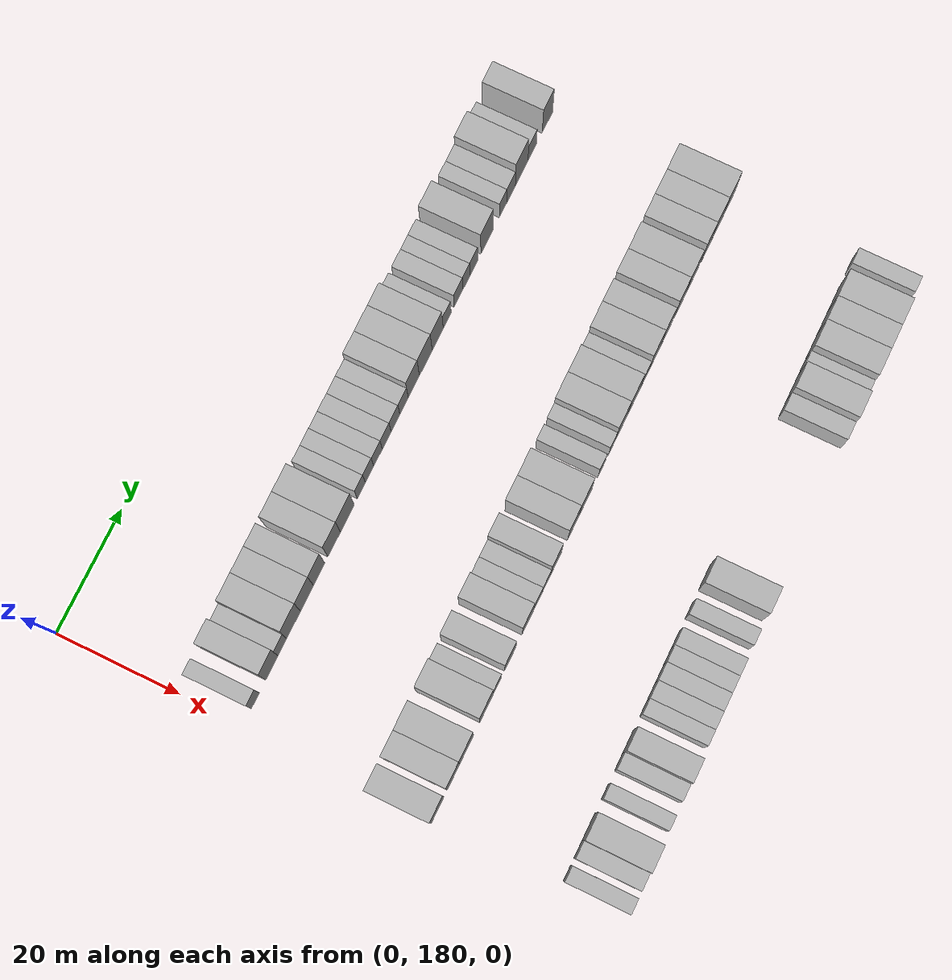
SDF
<sdf version="1.6">
 <world name="default">
  <model name="building_123">
   <static>1</static>
   <pose>25.0000 183.8803 0 0.000000 0.000000 0.000000</pose>
   <link name="link">
    <pose>0 0 3.00 0 0 0</pose>
    <collision name="collision"><geometry><box><size>10.0000 2.5077 6.0000</size></box></geometry></collision>
    <visual name="visual">
     <cast_shadows>0</cast_shadows>
     <geometry><box><size>10.0000 2.5077 6.0000</size></box></geometry>
     <material>
      <script>
       <uri>model://HANNAS_wall/materials/scripts</uri>
       <uri>model://HANNAS_wall/materials/textures</uri>
       <name>vrc/HANNAS_wall</name>
      </script>
     </material>
    </visual>
   </link>
  </model>
  <model name="building_124">
   <static>1</static>
   <pose>25.0000 189.0525 0 0.000000 0.000000 0.000000</pose>
   <link name="link">
    <pose>0 0 4.50 0 0 0</pose>
    <collision name="collision"><geometry><box><size>10.0000 3.8367 9.0000</size></box></geometry></collision>
    <visual name="visual">
     <cast_shadows>0</cast_shadows>
     <geometry><box><size>10.0000 3.8367 9.0000</size></box></geometry>
     <material>
      <script>
       <uri>model://HANNAS_wall/materials/scripts</uri>
       <uri>model://HANNAS_wall/materials/textures</uri>
       <name>vrc/HANNAS_wall</name>
      </script>
     </material>
    </visual>
   </link>
  </model>
  <model name="building_125">
   <static>1</static>
   <pose>25.0000 192.3361 0 0.000000 0.000000 0.000000</pose>
   <link name="link">
    <pose>0 0 3.00 0 0 0</pose>
    <collision name="collision"><geometry><box><size>10.0000 2.7306 6.0000</size></box></geometry></collision>
    <visual name="visual">
     <cast_shadows>0</cast_shadows>
     <geometry><box><size>10.0000 2.7306 6.0000</size></box></geometry>
     <material>
      <script>
       <uri>model://HANNAS_wall/materials/scripts</uri>
       <uri>model://HANNAS_wall/materials/textures</uri>
       <name>vrc/HANNAS_wall</name>
      </script>
     </material>
    </visual>
   </link>
  </model>
  <model name="building_126">
   <static>1</static>
   <pose>25.0000 195.8812 0 0.000000 0.000000 0.000000</pose>
   <link name="link">
    <pose>0 0 4.50 0 0 0</pose>
    <collision name="collision"><geometry><box><size>10.0000 4.3596 9.0000</size></box></geometry></collision>
    <visual name="visual">
     <cast_shadows>0</cast_shadows>
     <geometry><box><size>10.0000 4.3596 9.0000</size></box></geometry>
     <material>
      <script>
       <uri>model://HANNAS_wall/materials/scripts</uri>
       <uri>model://HANNAS_wall/materials/textures</uri>
       <name>vrc/HANNAS_wall</name>
      </script>
     </material>
    </visual>
   </link>
  </model>
  <model name="building_127">
   <static>1</static>
   <pose>25.0000 200.1119 0 0.000000 0.000000 0.000000</pose>
   <link name="link">
    <pose>0 0 4.50 0 0 0</pose>
    <collision name="collision"><geometry><box><size>10.0000 4.1016 9.0000</size></box></geometry></collision>
    <visual name="visual">
     <cast_shadows>0</cast_shadows>
     <geometry><box><size>10.0000 4.1016 9.0000</size></box></geometry>
     <material>
      <script>
       <uri>model://HANNAS_wall/materials/scripts</uri>
       <uri>model://HANNAS_wall/materials/textures</uri>
       <name>vrc/HANNAS_wall</name>
      </script>
     </material>
    </visual>
   </link>
  </model>
  <model name="building_128">
   <static>1</static>
   <pose>25.0000 203.9644 0 0.000000 0.000000 0.000000</pose>
   <link name="link">
    <pose>0 0 4.50 0 0 0</pose>
    <collision name="collision"><geometry><box><size>10.0000 3.6034 9.0000</size></box></geometry></collision>
    <visual name="visual">
     <cast_shadows>0</cast_shadows>
     <geometry><box><size>10.0000 3.6034 9.0000</size></box></geometry>
     <material>
      <script>
       <uri>model://HANNAS_wall/materials/scripts</uri>
       <uri>model://HANNAS_wall/materials/textures</uri>
       <name>vrc/HANNAS_wall</name>
      </script>
     </material>
    </visual>
   </link>
  </model>
  <model name="building_129">
   <static>1</static>
   <pose>25.0000 208.7601 0 0.000000 0.000000 0.000000</pose>
   <link name="link">
    <pose>0 0 4.50 0 0 0</pose>
    <collision name="collision"><geometry><box><size>10.0000 3.9880 9.0000</size></box></geometry></collision>
    <visual name="visual">
     <cast_shadows>0</cast_shadows>
     <geometry><box><size>10.0000 3.9880 9.0000</size></box></geometry>
     <material>
      <script>
       <uri>model://HANNAS_wall/materials/scripts</uri>
       <uri>model://HANNAS_wall/materials/textures</uri>
       <name>vrc/HANNAS_wall</name>
      </script>
     </material>
    </visual>
   </link>
  </model>
  <model name="building_130">
   <static>1</static>
   <pose>25.0000 212.9791 0 0.000000 0.000000 0.000000</pose>
   <link name="link">
    <pose>0 0 4.50 0 0 0</pose>
    <collision name="collision"><geometry><box><size>10.0000 4.4500 9.0000</size></box></geometry></collision>
    <visual name="visual">
     <cast_shadows>0</cast_shadows>
     <geometry><box><size>10.0000 4.4500 9.0000</size></box></geometry>
     <material>
      <script>
       <uri>model://HANNAS_wall/materials/scripts</uri>
       <uri>model://HANNAS_wall/materials/textures</uri>
       <name>vrc/HANNAS_wall</name>
      </script>
     </material>
    </visual>
   </link>
  </model>
  <model name="building_131">
   <static>1</static>
   <pose>25.0000 217.5082 0 0.000000 0.000000 0.000000</pose>
   <link name="link">
    <pose>0 0 3.00 0 0 0</pose>
    <collision name="collision"><geometry><box><size>10.0000 2.6082 6.0000</size></box></geometry></collision>
    <visual name="visual">
     <cast_shadows>0</cast_shadows>
     <geometry><box><size>10.0000 2.6082 6.0000</size></box></geometry>
     <material>
      <script>
       <uri>model://HANNAS_wall/materials/scripts</uri>
       <uri>model://HANNAS_wall/materials/textures</uri>
       <name>vrc/HANNAS_wall</name>
      </script>
     </material>
    </visual>
   </link>
  </model>
  <model name="building_132">
   <static>1</static>
   <pose>25.0000 220.1854 0 0.000000 0.000000 0.000000</pose>
   <link name="link">
    <pose>0 0 3.00 0 0 0</pose>
    <collision name="collision"><geometry><box><size>10.0000 2.7462 6.0000</size></box></geometry></collision>
    <visual name="visual">
     <cast_shadows>0</cast_shadows>
     <geometry><box><size>10.0000 2.7462 6.0000</size></box></geometry>
     <material>
      <script>
       <uri>model://HANNAS_wall/materials/scripts</uri>
       <uri>model://HANNAS_wall/materials/textures</uri>
       <name>vrc/HANNAS_wall</name>
      </script>
     </material>
    </visual>
   </link>
  </model>
  <model name="building_133">
   <static>1</static>
   <pose>25.0000 222.9455 0 0.000000 0.000000 0.000000</pose>
   <link name="link">
    <pose>0 0 3.00 0 0 0</pose>
    <collision name="collision"><geometry><box><size>10.0000 2.7739 6.0000</size></box></geometry></collision>
    <visual name="visual">
     <cast_shadows>0</cast_shadows>
     <geometry><box><size>10.0000 2.7739 6.0000</size></box></geometry>
     <material>
      <script>
       <uri>model://HANNAS_wall/materials/scripts</uri>
       <uri>model://HANNAS_wall/materials/textures</uri>
       <name>vrc/HANNAS_wall</name>
      </script>
     </material>
    </visual>
   </link>
  </model>
  <model name="building_134">
   <static>1</static>
   <pose>25.0000 225.7776 0 0.000000 0.000000 0.000000</pose>
   <link name="link">
    <pose>0 0 3.00 0 0 0</pose>
    <collision name="collision"><geometry><box><size>10.0000 2.8902 6.0000</size></box></geometry></collision>
    <visual name="visual">
     <cast_shadows>0</cast_shadows>
     <geometry><box><size>10.0000 2.8902 6.0000</size></box></geometry>
     <material>
      <script>
       <uri>model://HANNAS_wall/materials/scripts</uri>
       <uri>model://HANNAS_wall/materials/textures</uri>
       <name>vrc/HANNAS_wall</name>
      </script>
     </material>
    </visual>
   </link>
  </model>
  <model name="building_135">
   <static>1</static>
   <pose>25.0000 228.6524 0 0.000000 0.000000 0.000000</pose>
   <link name="link">
    <pose>0 0 3.00 0 0 0</pose>
    <collision name="collision"><geometry><box><size>10.0000 2.8596 6.0000</size></box></geometry></collision>
    <visual name="visual">
     <cast_shadows>0</cast_shadows>
     <geometry><box><size>10.0000 2.8596 6.0000</size></box></geometry>
     <material>
      <script>
       <uri>model://HANNAS_wall/materials/scripts</uri>
       <uri>model://HANNAS_wall/materials/textures</uri>
       <name>vrc/HANNAS_wall</name>
      </script>
     </material>
    </visual>
   </link>
  </model>
  <model name="building_136">
   <static>1</static>
   <pose>25.0000 231.4852 0 0.000000 0.000000 0.000000</pose>
   <link name="link">
    <pose>0 0 3.00 0 0 0</pose>
    <collision name="collision"><geometry><box><size>10.0000 2.8059 6.0000</size></box></geometry></collision>
    <visual name="visual">
     <cast_shadows>0</cast_shadows>
     <geometry><box><size>10.0000 2.8059 6.0000</size></box></geometry>
     <material>
      <script>
       <uri>model://HANNAS_wall/materials/scripts</uri>
       <uri>model://HANNAS_wall/materials/textures</uri>
       <name>vrc/HANNAS_wall</name>
      </script>
     </material>
    </visual>
   </link>
  </model>
  <model name="building_137">
   <static>1</static>
   <pose>25.0000 234.7266 0 0.000000 0.000000 0.000000</pose>
   <link name="link">
    <pose>0 0 4.50 0 0 0</pose>
    <collision name="collision"><geometry><box><size>10.0000 3.6769 9.0000</size></box></geometry></collision>
    <visual name="visual">
     <cast_shadows>0</cast_shadows>
     <geometry><box><size>10.0000 3.6769 9.0000</size></box></geometry>
     <material>
      <script>
       <uri>model://HANNAS_wall/materials/scripts</uri>
       <uri>model://HANNAS_wall/materials/textures</uri>
       <name>vrc/HANNAS_wall</name>
      </script>
     </material>
    </visual>
   </link>
  </model>
  <model name="building_138">
   <static>1</static>
   <pose>25.0000 238.6924 0 0.000000 0.000000 0.000000</pose>
   <link name="link">
    <pose>0 0 4.50 0 0 0</pose>
    <collision name="collision"><geometry><box><size>10.0000 4.2547 9.0000</size></box></geometry></collision>
    <visual name="visual">
     <cast_shadows>0</cast_shadows>
     <geometry><box><size>10.0000 4.2547 9.0000</size></box></geometry>
     <material>
      <script>
       <uri>model://HANNAS_wall/materials/scripts</uri>
       <uri>model://HANNAS_wall/materials/textures</uri>
       <name>vrc/HANNAS_wall</name>
      </script>
     </material>
    </visual>
   </link>
  </model>
  <model name="building_139">
   <static>1</static>
   <pose>25.0000 242.6608 0 0.000000 0.000000 0.000000</pose>
   <link name="link">
    <pose>0 0 4.50 0 0 0</pose>
    <collision name="collision"><geometry><box><size>10.0000 3.6821 9.0000</size></box></geometry></collision>
    <visual name="visual">
     <cast_shadows>0</cast_shadows>
     <geometry><box><size>10.0000 3.6821 9.0000</size></box></geometry>
     <material>
      <script>
       <uri>model://HANNAS_wall/materials/scripts</uri>
       <uri>model://HANNAS_wall/materials/textures</uri>
       <name>vrc/HANNAS_wall</name>
      </script>
     </material>
    </visual>
   </link>
  </model>
  <model name="building_140">
   <static>1</static>
   <pose>25.0000 245.8422 0 0.000000 0.000000 0.000000</pose>
   <link name="link">
    <pose>0 0 3.00 0 0 0</pose>
    <collision name="collision"><geometry><box><size>10.0000 2.6807 6.0000</size></box></geometry></collision>
    <visual name="visual">
     <cast_shadows>0</cast_shadows>
     <geometry><box><size>10.0000 2.6807 6.0000</size></box></geometry>
     <material>
      <script>
       <uri>model://HANNAS_wall/materials/scripts</uri>
       <uri>model://HANNAS_wall/materials/textures</uri>
       <name>vrc/HANNAS_wall</name>
      </script>
     </material>
    </visual>
   </link>
  </model>
  <model name="building_141">
   <static>1</static>
   <pose>25.0000 249.6644 0 0.000000 0.000000 0.000000</pose>
   <link name="link">
    <pose>0 0 3.00 0 0 0</pose>
    <collision name="collision"><geometry><box><size>10.0000 2.9637 6.0000</size></box></geometry></collision>
    <visual name="visual">
     <cast_shadows>0</cast_shadows>
     <geometry><box><size>10.0000 2.9637 6.0000</size></box></geometry>
     <material>
      <script>
       <uri>model://HANNAS_wall/materials/scripts</uri>
       <uri>model://HANNAS_wall/materials/textures</uri>
       <name>vrc/HANNAS_wall</name>
      </script>
     </material>
    </visual>
   </link>
  </model>
  <model name="building_142">
   <static>1</static>
   <pose>25.0000 252.3526 0 0.000000 0.000000 0.000000</pose>
   <link name="link">
    <pose>0 0 3.00 0 0 0</pose>
    <collision name="collision"><geometry><box><size>10.0000 2.4127 6.0000</size></box></geometry></collision>
    <visual name="visual">
     <cast_shadows>0</cast_shadows>
     <geometry><box><size>10.0000 2.4127 6.0000</size></box></geometry>
     <material>
      <script>
       <uri>model://HANNAS_wall/materials/scripts</uri>
       <uri>model://HANNAS_wall/materials/textures</uri>
       <name>vrc/HANNAS_wall</name>
      </script>
     </material>
    </visual>
   </link>
  </model>
  <model name="building_143">
   <static>1</static>
   <pose>25.0000 254.8942 0 0.000000 0.000000 0.000000</pose>
   <link name="link">
    <pose>0 0 3.00 0 0 0</pose>
    <collision name="collision"><geometry><box><size>10.0000 2.6706 6.0000</size></box></geometry></collision>
    <visual name="visual">
     <cast_shadows>0</cast_shadows>
     <geometry><box><size>10.0000 2.6706 6.0000</size></box></geometry>
     <material>
      <script>
       <uri>model://HANNAS_wall/materials/scripts</uri>
       <uri>model://HANNAS_wall/materials/textures</uri>
       <name>vrc/HANNAS_wall</name>
      </script>
     </material>
    </visual>
   </link>
  </model>
  <model name="building_144">
   <static>1</static>
   <pose>25.0000 259.3927 0 0.000000 0.000000 0.000000</pose>
   <link name="link">
    <pose>0 0 4.50 0 0 0</pose>
    <collision name="collision"><geometry><box><size>10.0000 4.3262 9.0000</size></box></geometry></collision>
    <visual name="visual">
     <cast_shadows>0</cast_shadows>
     <geometry><box><size>10.0000 4.3262 9.0000</size></box></geometry>
     <material>
      <script>
       <uri>model://HANNAS_wall/materials/scripts</uri>
       <uri>model://HANNAS_wall/materials/textures</uri>
       <name>vrc/HANNAS_wall</name>
      </script>
     </material>
    </visual>
   </link>
  </model>
  <model name="building_145">
   <static>1</static>
   <pose>25.0000 264.8262 0 0.000000 0.000000 0.000000</pose>
   <link name="link">
    <pose>0 0 3.00 0 0 0</pose>
    <collision name="collision"><geometry><box><size>10.0000 2.5409 6.0000</size></box></geometry></collision>
    <visual name="visual">
     <cast_shadows>0</cast_shadows>
     <geometry><box><size>10.0000 2.5409 6.0000</size></box></geometry>
     <material>
      <script>
       <uri>model://HANNAS_wall/materials/scripts</uri>
       <uri>model://HANNAS_wall/materials/textures</uri>
       <name>vrc/HANNAS_wall</name>
      </script>
     </material>
    </visual>
   </link>
  </model>
  <model name="building_146">
   <static>1</static>
   <pose>25.0000 267.5764 0 0.000000 0.000000 0.000000</pose>
   <link name="link">
    <pose>0 0 3.00 0 0 0</pose>
    <collision name="collision"><geometry><box><size>10.0000 2.9595 6.0000</size></box></geometry></collision>
    <visual name="visual">
     <cast_shadows>0</cast_shadows>
     <geometry><box><size>10.0000 2.9595 6.0000</size></box></geometry>
     <material>
      <script>
       <uri>model://HANNAS_wall/materials/scripts</uri>
       <uri>model://HANNAS_wall/materials/textures</uri>
       <name>vrc/HANNAS_wall</name>
      </script>
     </material>
    </visual>
   </link>
  </model>
  <model name="building_147">
   <static>1</static>
   <pose>25.0000 271.2343 0 0.000000 0.000000 0.000000</pose>
   <link name="link">
    <pose>0 0 4.50 0 0 0</pose>
    <collision name="collision"><geometry><box><size>10.0000 4.3564 9.0000</size></box></geometry></collision>
    <visual name="visual">
     <cast_shadows>0</cast_shadows>
     <geometry><box><size>10.0000 4.3564 9.0000</size></box></geometry>
     <material>
      <script>
       <uri>model://HANNAS_wall/materials/scripts</uri>
       <uri>model://HANNAS_wall/materials/textures</uri>
       <name>vrc/HANNAS_wall</name>
      </script>
     </material>
    </visual>
   </link>
  </model>
  <model name="building_148">
   <static>1</static>
   <pose>25.0000 274.8898 0 0.000000 0.000000 0.000000</pose>
   <link name="link">
    <pose>0 0 3.00 0 0 0</pose>
    <collision name="collision"><geometry><box><size>10.0000 2.9546 6.0000</size></box></geometry></collision>
    <visual name="visual">
     <cast_shadows>0</cast_shadows>
     <geometry><box><size>10.0000 2.9546 6.0000</size></box></geometry>
     <material>
      <script>
       <uri>model://HANNAS_wall/materials/scripts</uri>
       <uri>model://HANNAS_wall/materials/textures</uri>
       <name>vrc/HANNAS_wall</name>
      </script>
     </material>
    </visual>
   </link>
  </model>
  <model name="building_149">
   <static>1</static>
   <pose>25.0000 280.1823 0 0.000000 0.000000 0.000000</pose>
   <link name="link">
    <pose>0 0 4.50 0 0 0</pose>
    <collision name="collision"><geometry><box><size>10.0000 3.6305 9.0000</size></box></geometry></collision>
    <visual name="visual">
     <cast_shadows>0</cast_shadows>
     <geometry><box><size>10.0000 3.6305 9.0000</size></box></geometry>
     <material>
      <script>
       <uri>model://HANNAS_wall/materials/scripts</uri>
       <uri>model://HANNAS_wall/materials/textures</uri>
       <name>vrc/HANNAS_wall</name>
      </script>
     </material>
    </visual>
   </link>
  </model>
  <model name="building_272">
   <static>1</static>
   <pose>55.0000 181.4285 0 0.000000 0.000000 0.000000</pose>
   <link name="link">
    <pose>0 0 4.50 0 0 0</pose>
    <collision name="collision"><geometry><box><size>10.0000 4.1048 9.0000</size></box></geometry></collision>
    <visual name="visual">
     <cast_shadows>0</cast_shadows>
     <geometry><box><size>10.0000 4.1048 9.0000</size></box></geometry>
     <material>
      <script>
       <uri>model://HANNAS_wall/materials/scripts</uri>
       <uri>model://HANNAS_wall/materials/textures</uri>
       <name>vrc/HANNAS_wall</name>
      </script>
     </material>
    </visual>
   </link>
  </model>
  <model name="building_273">
   <static>1</static>
   <pose>55.0000 186.4915 0 0.000000 0.000000 0.000000</pose>
   <link name="link">
    <pose>0 0 4.50 0 0 0</pose>
    <collision name="collision"><geometry><box><size>10.0000 4.0212 9.0000</size></box></geometry></collision>
    <visual name="visual">
     <cast_shadows>0</cast_shadows>
     <geometry><box><size>10.0000 4.0212 9.0000</size></box></geometry>
     <material>
      <script>
       <uri>model://HANNAS_wall/materials/scripts</uri>
       <uri>model://HANNAS_wall/materials/textures</uri>
       <name>vrc/HANNAS_wall</name>
      </script>
     </material>
    </visual>
   </link>
  </model>
  <model name="building_274">
   <static>1</static>
   <pose>55.0000 190.7389 0 0.000000 0.000000 0.000000</pose>
   <link name="link">
    <pose>0 0 4.50 0 0 0</pose>
    <collision name="collision"><geometry><box><size>10.0000 4.4736 9.0000</size></box></geometry></collision>
    <visual name="visual">
     <cast_shadows>0</cast_shadows>
     <geometry><box><size>10.0000 4.4736 9.0000</size></box></geometry>
     <material>
      <script>
       <uri>model://HANNAS_wall/materials/scripts</uri>
       <uri>model://HANNAS_wall/materials/textures</uri>
       <name>vrc/HANNAS_wall</name>
      </script>
     </material>
    </visual>
   </link>
  </model>
  <model name="building_275">
   <static>1</static>
   <pose>55.0000 197.1629 0 0.000000 0.000000 0.000000</pose>
   <link name="link">
    <pose>0 0 4.50 0 0 0</pose>
    <collision name="collision"><geometry><box><size>10.0000 4.3743 9.0000</size></box></geometry></collision>
    <visual name="visual">
     <cast_shadows>0</cast_shadows>
     <geometry><box><size>10.0000 4.3743 9.0000</size></box></geometry>
     <material>
      <script>
       <uri>model://HANNAS_wall/materials/scripts</uri>
       <uri>model://HANNAS_wall/materials/textures</uri>
       <name>vrc/HANNAS_wall</name>
      </script>
     </material>
    </visual>
   </link>
  </model>
  <model name="building_276">
   <static>1</static>
   <pose>55.0000 200.6907 0 0.000000 0.000000 0.000000</pose>
   <link name="link">
    <pose>0 0 3.00 0 0 0</pose>
    <collision name="collision"><geometry><box><size>10.0000 2.6813 6.0000</size></box></geometry></collision>
    <visual name="visual">
     <cast_shadows>0</cast_shadows>
     <geometry><box><size>10.0000 2.6813 6.0000</size></box></geometry>
     <material>
      <script>
       <uri>model://HANNAS_wall/materials/scripts</uri>
       <uri>model://HANNAS_wall/materials/textures</uri>
       <name>vrc/HANNAS_wall</name>
      </script>
     </material>
    </visual>
   </link>
  </model>
  <model name="building_277">
   <static>1</static>
   <pose>55.0000 204.8999 0 0.000000 0.000000 0.000000</pose>
   <link name="link">
    <pose>0 0 4.50 0 0 0</pose>
    <collision name="collision"><geometry><box><size>10.0000 3.7370 9.0000</size></box></geometry></collision>
    <visual name="visual">
     <cast_shadows>0</cast_shadows>
     <geometry><box><size>10.0000 3.7370 9.0000</size></box></geometry>
     <material>
      <script>
       <uri>model://HANNAS_wall/materials/scripts</uri>
       <uri>model://HANNAS_wall/materials/textures</uri>
       <name>vrc/HANNAS_wall</name>
      </script>
     </material>
    </visual>
   </link>
  </model>
  <model name="building_278">
   <static>1</static>
   <pose>55.0000 210.6844 0 0.000000 0.000000 0.000000</pose>
   <link name="link">
    <pose>0 0 4.50 0 0 0</pose>
    <collision name="collision"><geometry><box><size>10.0000 3.8321 9.0000</size></box></geometry></collision>
    <visual name="visual">
     <cast_shadows>0</cast_shadows>
     <geometry><box><size>10.0000 3.8321 9.0000</size></box></geometry>
     <material>
      <script>
       <uri>model://HANNAS_wall/materials/scripts</uri>
       <uri>model://HANNAS_wall/materials/textures</uri>
       <name>vrc/HANNAS_wall</name>
      </script>
     </material>
    </visual>
   </link>
  </model>
  <model name="building_279">
   <static>1</static>
   <pose>55.0000 214.0443 0 0.000000 0.000000 0.000000</pose>
   <link name="link">
    <pose>0 0 3.00 0 0 0</pose>
    <collision name="collision"><geometry><box><size>10.0000 2.8877 6.0000</size></box></geometry></collision>
    <visual name="visual">
     <cast_shadows>0</cast_shadows>
     <geometry><box><size>10.0000 2.8877 6.0000</size></box></geometry>
     <material>
      <script>
       <uri>model://HANNAS_wall/materials/scripts</uri>
       <uri>model://HANNAS_wall/materials/textures</uri>
       <name>vrc/HANNAS_wall</name>
      </script>
     </material>
    </visual>
   </link>
  </model>
  <model name="building_280">
   <static>1</static>
   <pose>55.0000 216.8787 0 0.000000 0.000000 0.000000</pose>
   <link name="link">
    <pose>0 0 3.00 0 0 0</pose>
    <collision name="collision"><geometry><box><size>10.0000 2.7812 6.0000</size></box></geometry></collision>
    <visual name="visual">
     <cast_shadows>0</cast_shadows>
     <geometry><box><size>10.0000 2.7812 6.0000</size></box></geometry>
     <material>
      <script>
       <uri>model://HANNAS_wall/materials/scripts</uri>
       <uri>model://HANNAS_wall/materials/textures</uri>
       <name>vrc/HANNAS_wall</name>
      </script>
     </material>
    </visual>
   </link>
  </model>
  <model name="building_281">
   <static>1</static>
   <pose>55.0000 220.0837 0 0.000000 0.000000 0.000000</pose>
   <link name="link">
    <pose>0 0 4.50 0 0 0</pose>
    <collision name="collision"><geometry><box><size>10.0000 3.6287 9.0000</size></box></geometry></collision>
    <visual name="visual">
     <cast_shadows>0</cast_shadows>
     <geometry><box><size>10.0000 3.6287 9.0000</size></box></geometry>
     <material>
      <script>
       <uri>model://HANNAS_wall/materials/scripts</uri>
       <uri>model://HANNAS_wall/materials/textures</uri>
       <name>vrc/HANNAS_wall</name>
      </script>
     </material>
    </visual>
   </link>
  </model>
  <model name="building_282">
   <static>1</static>
   <pose>55.0000 225.8750 0 0.000000 0.000000 0.000000</pose>
   <link name="link">
    <pose>0 0 4.50 0 0 0</pose>
    <collision name="collision"><geometry><box><size>10.0000 3.9540 9.0000</size></box></geometry></collision>
    <visual name="visual">
     <cast_shadows>0</cast_shadows>
     <geometry><box><size>10.0000 3.9540 9.0000</size></box></geometry>
     <material>
      <script>
       <uri>model://HANNAS_wall/materials/scripts</uri>
       <uri>model://HANNAS_wall/materials/textures</uri>
       <name>vrc/HANNAS_wall</name>
      </script>
     </material>
    </visual>
   </link>
  </model>
  <model name="building_283">
   <static>1</static>
   <pose>55.0000 230.0237 0 0.000000 0.000000 0.000000</pose>
   <link name="link">
    <pose>0 0 4.50 0 0 0</pose>
    <collision name="collision"><geometry><box><size>10.0000 4.3434 9.0000</size></box></geometry></collision>
    <visual name="visual">
     <cast_shadows>0</cast_shadows>
     <geometry><box><size>10.0000 4.3434 9.0000</size></box></geometry>
     <material>
      <script>
       <uri>model://HANNAS_wall/materials/scripts</uri>
       <uri>model://HANNAS_wall/materials/textures</uri>
       <name>vrc/HANNAS_wall</name>
      </script>
     </material>
    </visual>
   </link>
  </model>
  <model name="building_284">
   <static>1</static>
   <pose>55.0000 235.4565 0 0.000000 0.000000 0.000000</pose>
   <link name="link">
    <pose>0 0 3.00 0 0 0</pose>
    <collision name="collision"><geometry><box><size>10.0000 2.5221 6.0000</size></box></geometry></collision>
    <visual name="visual">
     <cast_shadows>0</cast_shadows>
     <geometry><box><size>10.0000 2.5221 6.0000</size></box></geometry>
     <material>
      <script>
       <uri>model://HANNAS_wall/materials/scripts</uri>
       <uri>model://HANNAS_wall/materials/textures</uri>
       <name>vrc/HANNAS_wall</name>
      </script>
     </material>
    </visual>
   </link>
  </model>
  <model name="building_285">
   <static>1</static>
   <pose>55.0000 238.9524 0 0.000000 0.000000 0.000000</pose>
   <link name="link">
    <pose>0 0 3.00 0 0 0</pose>
    <collision name="collision"><geometry><box><size>10.0000 2.4697 6.0000</size></box></geometry></collision>
    <visual name="visual">
     <cast_shadows>0</cast_shadows>
     <geometry><box><size>10.0000 2.4697 6.0000</size></box></geometry>
     <material>
      <script>
       <uri>model://HANNAS_wall/materials/scripts</uri>
       <uri>model://HANNAS_wall/materials/textures</uri>
       <name>vrc/HANNAS_wall</name>
      </script>
     </material>
    </visual>
   </link>
  </model>
  <model name="building_286">
   <static>1</static>
   <pose>55.0000 242.3218 0 0.000000 0.000000 0.000000</pose>
   <link name="link">
    <pose>0 0 4.50 0 0 0</pose>
    <collision name="collision"><geometry><box><size>10.0000 4.2691 9.0000</size></box></geometry></collision>
    <visual name="visual">
     <cast_shadows>0</cast_shadows>
     <geometry><box><size>10.0000 4.2691 9.0000</size></box></geometry>
     <material>
      <script>
       <uri>model://HANNAS_wall/materials/scripts</uri>
       <uri>model://HANNAS_wall/materials/textures</uri>
       <name>vrc/HANNAS_wall</name>
      </script>
     </material>
    </visual>
   </link>
  </model>
  <model name="building_287">
   <static>1</static>
   <pose>55.0000 246.6547 0 0.000000 0.000000 0.000000</pose>
   <link name="link">
    <pose>0 0 4.50 0 0 0</pose>
    <collision name="collision"><geometry><box><size>10.0000 4.3966 9.0000</size></box></geometry></collision>
    <visual name="visual">
     <cast_shadows>0</cast_shadows>
     <geometry><box><size>10.0000 4.3966 9.0000</size></box></geometry>
     <material>
      <script>
       <uri>model://HANNAS_wall/materials/scripts</uri>
       <uri>model://HANNAS_wall/materials/textures</uri>
       <name>vrc/HANNAS_wall</name>
      </script>
     </material>
    </visual>
   </link>
  </model>
  <model name="building_288">
   <static>1</static>
   <pose>55.0000 250.3220 0 0.000000 0.000000 0.000000</pose>
   <link name="link">
    <pose>0 0 3.00 0 0 0</pose>
    <collision name="collision"><geometry><box><size>10.0000 2.9381 6.0000</size></box></geometry></collision>
    <visual name="visual">
     <cast_shadows>0</cast_shadows>
     <geometry><box><size>10.0000 2.9381 6.0000</size></box></geometry>
     <material>
      <script>
       <uri>model://HANNAS_wall/materials/scripts</uri>
       <uri>model://HANNAS_wall/materials/textures</uri>
       <name>vrc/HANNAS_wall</name>
      </script>
     </material>
    </visual>
   </link>
  </model>
  <model name="building_289">
   <static>1</static>
   <pose>55.0000 253.9023 0 0.000000 0.000000 0.000000</pose>
   <link name="link">
    <pose>0 0 4.50 0 0 0</pose>
    <collision name="collision"><geometry><box><size>10.0000 4.2225 9.0000</size></box></geometry></collision>
    <visual name="visual">
     <cast_shadows>0</cast_shadows>
     <geometry><box><size>10.0000 4.2225 9.0000</size></box></geometry>
     <material>
      <script>
       <uri>model://HANNAS_wall/materials/scripts</uri>
       <uri>model://HANNAS_wall/materials/textures</uri>
       <name>vrc/HANNAS_wall</name>
      </script>
     </material>
    </visual>
   </link>
  </model>
  <model name="building_290">
   <static>1</static>
   <pose>55.0000 257.8704 0 0.000000 0.000000 0.000000</pose>
   <link name="link">
    <pose>0 0 4.50 0 0 0</pose>
    <collision name="collision"><geometry><box><size>10.0000 3.7136 9.0000</size></box></geometry></collision>
    <visual name="visual">
     <cast_shadows>0</cast_shadows>
     <geometry><box><size>10.0000 3.7136 9.0000</size></box></geometry>
     <material>
      <script>
       <uri>model://HANNAS_wall/materials/scripts</uri>
       <uri>model://HANNAS_wall/materials/textures</uri>
       <name>vrc/HANNAS_wall</name>
      </script>
     </material>
    </visual>
   </link>
  </model>
  <model name="building_291">
   <static>1</static>
   <pose>55.0000 262.7176 0 0.000000 0.000000 0.000000</pose>
   <link name="link">
    <pose>0 0 4.50 0 0 0</pose>
    <collision name="collision"><geometry><box><size>10.0000 3.9808 9.0000</size></box></geometry></collision>
    <visual name="visual">
     <cast_shadows>0</cast_shadows>
     <geometry><box><size>10.0000 3.9808 9.0000</size></box></geometry>
     <material>
      <script>
       <uri>model://HANNAS_wall/materials/scripts</uri>
       <uri>model://HANNAS_wall/materials/textures</uri>
       <name>vrc/HANNAS_wall</name>
      </script>
     </material>
    </visual>
   </link>
  </model>
  <model name="building_292">
   <static>1</static>
   <pose>55.0000 266.9521 0 0.000000 0.000000 0.000000</pose>
   <link name="link">
    <pose>0 0 4.50 0 0 0</pose>
    <collision name="collision"><geometry><box><size>10.0000 4.4882 9.0000</size></box></geometry></collision>
    <visual name="visual">
     <cast_shadows>0</cast_shadows>
     <geometry><box><size>10.0000 4.4882 9.0000</size></box></geometry>
     <material>
      <script>
       <uri>model://HANNAS_wall/materials/scripts</uri>
       <uri>model://HANNAS_wall/materials/textures</uri>
       <name>vrc/HANNAS_wall</name>
      </script>
     </material>
    </visual>
   </link>
  </model>
  <model name="building_293">
   <static>1</static>
   <pose>55.0000 272.0469 0 0.000000 0.000000 0.000000</pose>
   <link name="link">
    <pose>0 0 4.50 0 0 0</pose>
    <collision name="collision"><geometry><box><size>10.0000 3.7014 9.0000</size></box></geometry></collision>
    <visual name="visual">
     <cast_shadows>0</cast_shadows>
     <geometry><box><size>10.0000 3.7014 9.0000</size></box></geometry>
     <material>
      <script>
       <uri>model://HANNAS_wall/materials/scripts</uri>
       <uri>model://HANNAS_wall/materials/textures</uri>
       <name>vrc/HANNAS_wall</name>
      </script>
     </material>
    </visual>
   </link>
  </model>
  <model name="building_294">
   <static>1</static>
   <pose>55.0000 275.9656 0 0.000000 0.000000 0.000000</pose>
   <link name="link">
    <pose>0 0 4.50 0 0 0</pose>
    <collision name="collision"><geometry><box><size>10.0000 4.1360 9.0000</size></box></geometry></collision>
    <visual name="visual">
     <cast_shadows>0</cast_shadows>
     <geometry><box><size>10.0000 4.1360 9.0000</size></box></geometry>
     <material>
      <script>
       <uri>model://HANNAS_wall/materials/scripts</uri>
       <uri>model://HANNAS_wall/materials/textures</uri>
       <name>vrc/HANNAS_wall</name>
      </script>
     </material>
    </visual>
   </link>
  </model>
  <model name="building_295">
   <static>1</static>
   <pose>55.0000 280.2120 0 0.000000 0.000000 0.000000</pose>
   <link name="link">
    <pose>0 0 4.50 0 0 0</pose>
    <collision name="collision"><geometry><box><size>10.0000 4.3568 9.0000</size></box></geometry></collision>
    <visual name="visual">
     <cast_shadows>0</cast_shadows>
     <geometry><box><size>10.0000 4.3568 9.0000</size></box></geometry>
     <material>
      <script>
       <uri>model://HANNAS_wall/materials/scripts</uri>
       <uri>model://HANNAS_wall/materials/textures</uri>
       <name>vrc/HANNAS_wall</name>
      </script>
     </material>
    </visual>
   </link>
  </model>
  <model name="building_411">
   <static>1</static>
   <pose>85.0000 181.5428 0 0.000000 0.000000 0.000000</pose>
   <link name="link">
    <pose>0 0 3.00 0 0 0</pose>
    <collision name="collision"><geometry><box><size>10.0000 2.4488 6.0000</size></box></geometry></collision>
    <visual name="visual">
     <cast_shadows>0</cast_shadows>
     <geometry><box><size>10.0000 2.4488 6.0000</size></box></geometry>
     <material>
      <script>
       <uri>model://HANNAS_wall/materials/scripts</uri>
       <uri>model://HANNAS_wall/materials/textures</uri>
       <name>vrc/HANNAS_wall</name>
      </script>
     </material>
    </visual>
   </link>
  </model>
  <model name="building_412">
   <static>1</static>
   <pose>85.0000 185.1366 0 0.000000 0.000000 0.000000</pose>
   <link name="link">
    <pose>0 0 3.00 0 0 0</pose>
    <collision name="collision"><geometry><box><size>10.0000 2.7388 6.0000</size></box></geometry></collision>
    <visual name="visual">
     <cast_shadows>0</cast_shadows>
     <geometry><box><size>10.0000 2.7388 6.0000</size></box></geometry>
     <material>
      <script>
       <uri>model://HANNAS_wall/materials/scripts</uri>
       <uri>model://HANNAS_wall/materials/textures</uri>
       <name>vrc/HANNAS_wall</name>
      </script>
     </material>
    </visual>
   </link>
  </model>
  <model name="building_413">
   <static>1</static>
   <pose>85.0000 188.6118 0 0.000000 0.000000 0.000000</pose>
   <link name="link">
    <pose>0 0 4.50 0 0 0</pose>
    <collision name="collision"><geometry><box><size>10.0000 4.2115 9.0000</size></box></geometry></collision>
    <visual name="visual">
     <cast_shadows>0</cast_shadows>
     <geometry><box><size>10.0000 4.2115 9.0000</size></box></geometry>
     <material>
      <script>
       <uri>model://HANNAS_wall/materials/scripts</uri>
       <uri>model://HANNAS_wall/materials/textures</uri>
       <name>vrc/HANNAS_wall</name>
      </script>
     </material>
    </visual>
   </link>
  </model>
  <model name="building_414">
   <static>1</static>
   <pose>85.0000 193.9196 0 0.000000 0.000000 0.000000</pose>
   <link name="link">
    <pose>0 0 3.00 0 0 0</pose>
    <collision name="collision"><geometry><box><size>10.0000 2.4042 6.0000</size></box></geometry></collision>
    <visual name="visual">
     <cast_shadows>0</cast_shadows>
     <geometry><box><size>10.0000 2.4042 6.0000</size></box></geometry>
     <material>
      <script>
       <uri>model://HANNAS_wall/materials/scripts</uri>
       <uri>model://HANNAS_wall/materials/textures</uri>
       <name>vrc/HANNAS_wall</name>
      </script>
     </material>
    </visual>
   </link>
  </model>
  <model name="building_415">
   <static>1</static>
   <pose>85.0000 198.4683 0 0.000000 0.000000 0.000000</pose>
   <link name="link">
    <pose>0 0 3.00 0 0 0</pose>
    <collision name="collision"><geometry><box><size>10.0000 2.6932 6.0000</size></box></geometry></collision>
    <visual name="visual">
     <cast_shadows>0</cast_shadows>
     <geometry><box><size>10.0000 2.6932 6.0000</size></box></geometry>
     <material>
      <script>
       <uri>model://HANNAS_wall/materials/scripts</uri>
       <uri>model://HANNAS_wall/materials/textures</uri>
       <name>vrc/HANNAS_wall</name>
      </script>
     </material>
    </visual>
   </link>
  </model>
  <model name="building_416">
   <static>1</static>
   <pose>85.0000 201.6665 0 0.000000 0.000000 0.000000</pose>
   <link name="link">
    <pose>0 0 4.50 0 0 0</pose>
    <collision name="collision"><geometry><box><size>10.0000 3.7033 9.0000</size></box></geometry></collision>
    <visual name="visual">
     <cast_shadows>0</cast_shadows>
     <geometry><box><size>10.0000 3.7033 9.0000</size></box></geometry>
     <material>
      <script>
       <uri>model://HANNAS_wall/materials/scripts</uri>
       <uri>model://HANNAS_wall/materials/textures</uri>
       <name>vrc/HANNAS_wall</name>
      </script>
     </material>
    </visual>
   </link>
  </model>
  <model name="building_417">
   <static>1</static>
   <pose>85.0000 206.7585 0 0.000000 0.000000 0.000000</pose>
   <link name="link">
    <pose>0 0 3.00 0 0 0</pose>
    <collision name="collision"><geometry><box><size>10.0000 2.4806 6.0000</size></box></geometry></collision>
    <visual name="visual">
     <cast_shadows>0</cast_shadows>
     <geometry><box><size>10.0000 2.4806 6.0000</size></box></geometry>
     <material>
      <script>
       <uri>model://HANNAS_wall/materials/scripts</uri>
       <uri>model://HANNAS_wall/materials/textures</uri>
       <name>vrc/HANNAS_wall</name>
      </script>
     </material>
    </visual>
   </link>
  </model>
  <model name="building_418">
   <static>1</static>
   <pose>85.0000 209.4034 0 0.000000 0.000000 0.000000</pose>
   <link name="link">
    <pose>0 0 3.00 0 0 0</pose>
    <collision name="collision"><geometry><box><size>10.0000 2.8093 6.0000</size></box></geometry></collision>
    <visual name="visual">
     <cast_shadows>0</cast_shadows>
     <geometry><box><size>10.0000 2.8093 6.0000</size></box></geometry>
     <material>
      <script>
       <uri>model://HANNAS_wall/materials/scripts</uri>
       <uri>model://HANNAS_wall/materials/textures</uri>
       <name>vrc/HANNAS_wall</name>
      </script>
     </material>
    </visual>
   </link>
  </model>
  <model name="building_419">
   <static>1</static>
   <pose>85.0000 212.2138 0 0.000000 0.000000 0.000000</pose>
   <link name="link">
    <pose>0 0 3.00 0 0 0</pose>
    <collision name="collision"><geometry><box><size>10.0000 2.8116 6.0000</size></box></geometry></collision>
    <visual name="visual">
     <cast_shadows>0</cast_shadows>
     <geometry><box><size>10.0000 2.8116 6.0000</size></box></geometry>
     <material>
      <script>
       <uri>model://HANNAS_wall/materials/scripts</uri>
       <uri>model://HANNAS_wall/materials/textures</uri>
       <name>vrc/HANNAS_wall</name>
      </script>
     </material>
    </visual>
   </link>
  </model>
  <model name="building_420">
   <static>1</static>
   <pose>85.0000 214.9432 0 0.000000 0.000000 0.000000</pose>
   <link name="link">
    <pose>0 0 3.00 0 0 0</pose>
    <collision name="collision"><geometry><box><size>10.0000 2.6471 6.0000</size></box></geometry></collision>
    <visual name="visual">
     <cast_shadows>0</cast_shadows>
     <geometry><box><size>10.0000 2.6471 6.0000</size></box></geometry>
     <material>
      <script>
       <uri>model://HANNAS_wall/materials/scripts</uri>
       <uri>model://HANNAS_wall/materials/textures</uri>
       <name>vrc/HANNAS_wall</name>
      </script>
     </material>
    </visual>
   </link>
  </model>
  <model name="building_421">
   <static>1</static>
   <pose>85.0000 217.6193 0 0.000000 0.000000 0.000000</pose>
   <link name="link">
    <pose>0 0 3.00 0 0 0</pose>
    <collision name="collision"><geometry><box><size>10.0000 2.7051 6.0000</size></box></geometry></collision>
    <visual name="visual">
     <cast_shadows>0</cast_shadows>
     <geometry><box><size>10.0000 2.7051 6.0000</size></box></geometry>
     <material>
      <script>
       <uri>model://HANNAS_wall/materials/scripts</uri>
       <uri>model://HANNAS_wall/materials/textures</uri>
       <name>vrc/HANNAS_wall</name>
      </script>
     </material>
    </visual>
   </link>
  </model>
  <model name="building_422">
   <static>1</static>
   <pose>85.0000 222.2318 0 0.000000 0.000000 0.000000</pose>
   <link name="link">
    <pose>0 0 3.00 0 0 0</pose>
    <collision name="collision"><geometry><box><size>10.0000 2.5198 6.0000</size></box></geometry></collision>
    <visual name="visual">
     <cast_shadows>0</cast_shadows>
     <geometry><box><size>10.0000 2.5198 6.0000</size></box></geometry>
     <material>
      <script>
       <uri>model://HANNAS_wall/materials/scripts</uri>
       <uri>model://HANNAS_wall/materials/textures</uri>
       <name>vrc/HANNAS_wall</name>
      </script>
     </material>
    </visual>
   </link>
  </model>
  <model name="building_423">
   <static>1</static>
   <pose>85.0000 227.5579 0 0.000000 0.000000 0.000000</pose>
   <link name="link">
    <pose>0 0 4.50 0 0 0</pose>
    <collision name="collision"><geometry><box><size>10.0000 4.1325 9.0000</size></box></geometry></collision>
    <visual name="visual">
     <cast_shadows>0</cast_shadows>
     <geometry><box><size>10.0000 4.1325 9.0000</size></box></geometry>
     <material>
      <script>
       <uri>model://HANNAS_wall/materials/scripts</uri>
       <uri>model://HANNAS_wall/materials/textures</uri>
       <name>vrc/HANNAS_wall</name>
      </script>
     </material>
    </visual>
   </link>
  </model>
  <model name="building_424">
   <static>1</static>
   <pose>85.0000 254.9494 0 0.000000 0.000000 0.000000</pose>
   <link name="link">
    <pose>0 0 3.00 0 0 0</pose>
    <collision name="collision"><geometry><box><size>10.0000 2.8835 6.0000</size></box></geometry></collision>
    <visual name="visual">
     <cast_shadows>0</cast_shadows>
     <geometry><box><size>10.0000 2.8835 6.0000</size></box></geometry>
     <material>
      <script>
       <uri>model://HANNAS_wall/materials/scripts</uri>
       <uri>model://HANNAS_wall/materials/textures</uri>
       <name>vrc/HANNAS_wall</name>
      </script>
     </material>
    </visual>
   </link>
  </model>
  <model name="building_425">
   <static>1</static>
   <pose>85.0000 258.5112 0 0.000000 0.000000 0.000000</pose>
   <link name="link">
    <pose>0 0 4.50 0 0 0</pose>
    <collision name="collision"><geometry><box><size>10.0000 4.2400 9.0000</size></box></geometry></collision>
    <visual name="visual">
     <cast_shadows>0</cast_shadows>
     <geometry><box><size>10.0000 4.2400 9.0000</size></box></geometry>
     <material>
      <script>
       <uri>model://HANNAS_wall/materials/scripts</uri>
       <uri>model://HANNAS_wall/materials/textures</uri>
       <name>vrc/HANNAS_wall</name>
      </script>
     </material>
    </visual>
   </link>
  </model>
  <model name="building_426">
   <static>1</static>
   <pose>85.0000 261.9229 0 0.000000 0.000000 0.000000</pose>
   <link name="link">
    <pose>0 0 3.00 0 0 0</pose>
    <collision name="collision"><geometry><box><size>10.0000 2.5834 6.0000</size></box></geometry></collision>
    <visual name="visual">
     <cast_shadows>0</cast_shadows>
     <geometry><box><size>10.0000 2.5834 6.0000</size></box></geometry>
     <material>
      <script>
       <uri>model://HANNAS_wall/materials/scripts</uri>
       <uri>model://HANNAS_wall/materials/textures</uri>
       <name>vrc/HANNAS_wall</name>
      </script>
     </material>
    </visual>
   </link>
  </model>
  <model name="building_427">
   <static>1</static>
   <pose>85.0000 265.3777 0 0.000000 0.000000 0.000000</pose>
   <link name="link">
    <pose>0 0 4.50 0 0 0</pose>
    <collision name="collision"><geometry><box><size>10.0000 4.3262 9.0000</size></box></geometry></collision>
    <visual name="visual">
     <cast_shadows>0</cast_shadows>
     <geometry><box><size>10.0000 4.3262 9.0000</size></box></geometry>
     <material>
      <script>
       <uri>model://HANNAS_wall/materials/scripts</uri>
       <uri>model://HANNAS_wall/materials/textures</uri>
       <name>vrc/HANNAS_wall</name>
      </script>
     </material>
    </visual>
   </link>
  </model>
  <model name="building_428">
   <static>1</static>
   <pose>85.0000 269.4706 0 0.000000 0.000000 0.000000</pose>
   <link name="link">
    <pose>0 0 4.50 0 0 0</pose>
    <collision name="collision"><geometry><box><size>10.0000 3.8596 9.0000</size></box></geometry></collision>
    <visual name="visual">
     <cast_shadows>0</cast_shadows>
     <geometry><box><size>10.0000 3.8596 9.0000</size></box></geometry>
     <material>
      <script>
       <uri>model://HANNAS_wall/materials/scripts</uri>
       <uri>model://HANNAS_wall/materials/textures</uri>
       <name>vrc/HANNAS_wall</name>
      </script>
     </material>
    </visual>
   </link>
  </model>
  <model name="building_429">
   <static>1</static>
   <pose>85.0000 273.5968 0 0.000000 0.000000 0.000000</pose>
   <link name="link">
    <pose>0 0 4.50 0 0 0</pose>
    <collision name="collision"><geometry><box><size>10.0000 4.3928 9.0000</size></box></geometry></collision>
    <visual name="visual">
     <cast_shadows>0</cast_shadows>
     <geometry><box><size>10.0000 4.3928 9.0000</size></box></geometry>
     <material>
      <script>
       <uri>model://HANNAS_wall/materials/scripts</uri>
       <uri>model://HANNAS_wall/materials/textures</uri>
       <name>vrc/HANNAS_wall</name>
      </script>
     </material>
    </visual>
   </link>
  </model>
  <model name="building_430">
   <static>1</static>
   <pose>85.0000 279.0799 0 0.000000 0.000000 0.000000</pose>
   <link name="link">
    <pose>0 0 3.00 0 0 0</pose>
    <collision name="collision"><geometry><box><size>10.0000 2.5734 6.0000</size></box></geometry></collision>
    <visual name="visual">
     <cast_shadows>0</cast_shadows>
     <geometry><box><size>10.0000 2.5734 6.0000</size></box></geometry>
     <material>
      <script>
       <uri>model://HANNAS_wall/materials/scripts</uri>
       <uri>model://HANNAS_wall/materials/textures</uri>
       <name>vrc/HANNAS_wall</name>
      </script>
     </material>
    </visual>
   </link>
  </model>
 </world>
</sdf>
